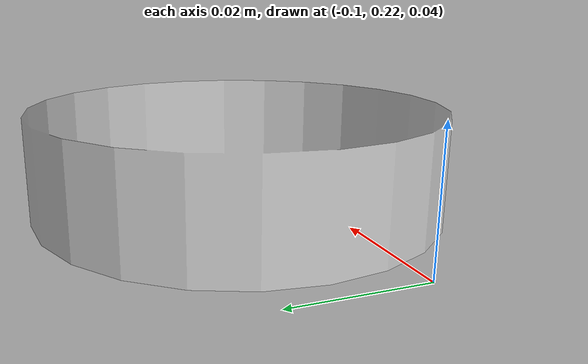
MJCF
<mujoco model="original-57">
  <default>
    <default class="visual">
      <geom group="2" type="mesh" contype="0" conaffinity="0"/>
    </default>
    <default class="collision">
      <geom group="3" type="mesh"/>
    </default>
  </default>
  <asset>
    <material name="material_0_0" specular="0.06666666666666667" shininess="0.03" rgba="0.8 0.8 0.8 1"/>
    <mesh file="original-57.obj"/>
  </asset>
  <worldbody>
    <body name="original-57">
      <geom material="material_0_0" mesh="original-57" class="visual"/>
      <geom mesh="original-57" class="collision"/>
    </body>
  </worldbody>
</mujoco>
